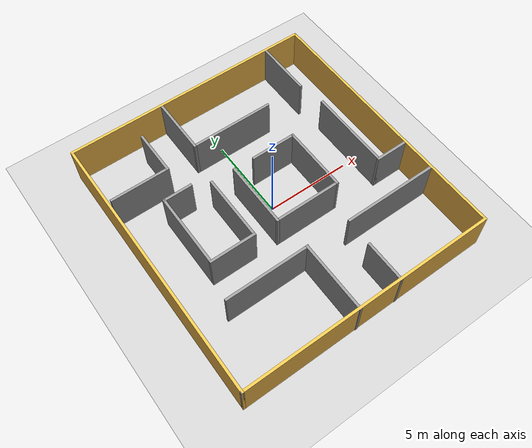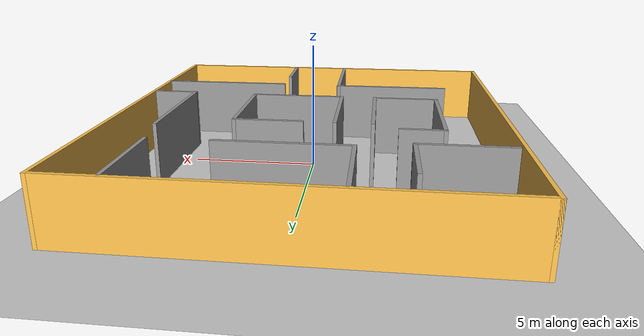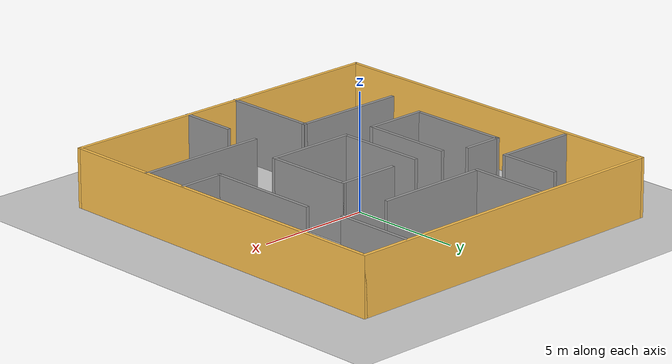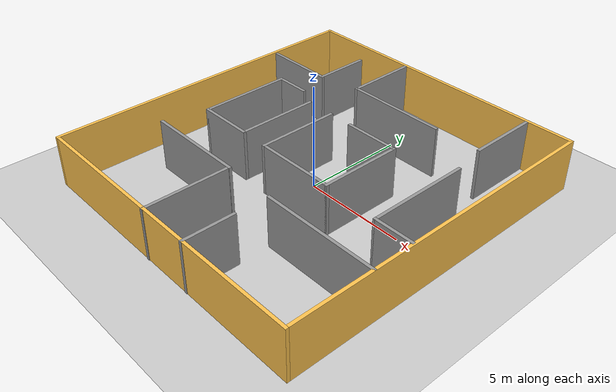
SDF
<sdf version="1.7">
 <world name="default">
  <light name="sun" type="directional">
   <pose>0 0 10 0 -0 0</pose>
   <diffuse>0.8 0.8 0.8 1</diffuse>
   <specular>0.2 0.2 0.2 1</specular>
   <attenuation>
    <range>1000</range>
    <constant>0.9</constant>
    <linear>0.01</linear>
    <quadratic>0.001</quadratic>
   </attenuation>
   <direction>-0.5 0.1 -0.9</direction>
   <spot><inner_angle>0</inner_angle><outer_angle>0</outer_angle><falloff>0</falloff></spot>
  </light>
  <model name="ground_plane">
   <static>1</static>
   <link name="link">
    <collision name="collision">
     <geometry><plane><normal>0 0 1</normal><size>100 100</size></plane></geometry>
     <surface>
      <contact><collide_bitmask>65535</collide_bitmask></contact>
      <friction><ode><mu>100</mu><mu2>50</mu2></ode></friction>
     </surface>
    </collision>
    <visual name="visual">
     <cast_shadows>0</cast_shadows>
     <geometry><plane><normal>0 0 1</normal><size>100 100</size></plane></geometry>
     <material>
      <script><uri>file://media/materials/scripts/gazebo.material</uri><name>Gazebo/Grey</name></script>
     </material>
    </visual>
   </link>
  </model>
  <gravity>0 0 -9.8</gravity>
  <magnetic_field>6e-06 2.3e-05 -4.2e-05</magnetic_field>
  <atmosphere type="adiabatic"/>
  <physics type="ode">
   <max_step_size>0.001</max_step_size>
   <real_time_factor>1</real_time_factor>
   <real_time_update_rate>1000</real_time_update_rate>
  </physics>
  <scene><ambient>0.4 0.4 0.4 1</ambient><background>0.7 0.7 0.7 1</background><shadows>1</shadows></scene>
  <spherical_coordinates>
   <surface_model>EARTH_WGS84</surface_model>
   <latitude_deg>0</latitude_deg>
   <longitude_deg>0</longitude_deg>
   <elevation>0</elevation>
   <heading_deg>0</heading_deg>
  </spherical_coordinates>
  <model name="RRC">
   <link name="Wall_0">
    <collision name="Wall_0_Collision">
     <geometry><box><size>16.15 0.15 2.5</size></box></geometry>
     <pose>0 0 1.25 0 -0 0</pose>
    </collision>
    <visual name="Wall_0_Visual">
     <pose>0 0 1.25 0 -0 0</pose>
     <geometry><box><size>16.15 0.15 2.5</size></box></geometry>
     <material>
      <script><uri>file://media/materials/scripts/gazebo.material</uri><name>Gazebo/Grey</name></script>
      <ambient>1 0.764706 0.305882 1</ambient>
     </material>
     <meta><layer>0</layer></meta>
    </visual>
    <pose>-7.5 0 0 0 -0 1.5708</pose>
   </link>
   <link name="Wall_1">
    <collision name="Wall_1_Collision">
     <geometry><box><size>15.15 0.15 2.5</size></box></geometry>
     <pose>0 0 1.25 0 -0 0</pose>
    </collision>
    <visual name="Wall_1_Visual">
     <pose>0 0 1.25 0 -0 0</pose>
     <geometry><box><size>15.15 0.15 2.5</size></box></geometry>
     <material>
      <script><uri>file://media/materials/scripts/gazebo.material</uri><name>Gazebo/Grey</name></script>
      <ambient>1 0.764706 0.305882 1</ambient>
     </material>
     <meta><layer>0</layer></meta>
    </visual>
    <pose>0 8 0 0 -0 0</pose>
   </link>
   <link name="Wall_2">
    <collision name="Wall_2_Collision">
     <geometry><box><size>16.15 0.15 2.5</size></box></geometry>
     <pose>0 0 1.25 0 -0 0</pose>
    </collision>
    <visual name="Wall_2_Visual">
     <pose>0 0 1.25 0 -0 0</pose>
     <geometry><box><size>16.15 0.15 2.5</size></box></geometry>
     <material>
      <script><uri>file://media/materials/scripts/gazebo.material</uri><name>Gazebo/Grey</name></script>
      <ambient>1 0.764706 0.305882 1</ambient>
     </material>
     <meta><layer>0</layer></meta>
    </visual>
    <pose>7.5 0 0 0 -0 -1.5708</pose>
   </link>
   <link name="Wall_3">
    <collision name="Wall_3_Collision">
     <geometry><box><size>15.15 0.15 2.5</size></box></geometry>
     <pose>0 0 1.25 0 -0 0</pose>
    </collision>
    <visual name="Wall_3_Visual">
     <pose>0 0 1.25 0 -0 0</pose>
     <geometry><box><size>15.15 0.15 2.5</size></box></geometry>
     <material>
      <script><uri>file://media/materials/scripts/gazebo.material</uri><name>Gazebo/Grey</name></script>
      <ambient>1 0.764706 0.305882 1</ambient>
     </material>
     <meta><layer>0</layer></meta>
    </visual>
    <pose>0 -8 0 0 -0 3.14159</pose>
   </link>
   <link name="Wall_4">
    <collision name="Wall_4_Collision">
     <geometry><box><size>0.15 0.15 2.5</size></box></geometry>
     <pose>0 0 1.25 0 -0 0</pose>
    </collision>
    <visual name="Wall_4_Visual">
     <pose>0 0 1.25 0 -0 0</pose>
     <geometry><box><size>0.15 0.15 2.5</size></box></geometry>
     <material>
      <script><uri>file://media/materials/scripts/gazebo.material</uri><name>Gazebo/Grey</name></script>
      <ambient>1 1 1 1</ambient>
     </material>
     <meta><layer>0</layer></meta>
    </visual>
    <pose>-7.5 -8 0 0 -0 0</pose>
   </link>
   <static>1</static>
  </model>
  <audio><device>default</device></audio>
  <model name="world_25_6.world">
   <pose>0.119762 -0.057609 0 0 -0 0</pose>
   <link name="Wall_0">
    <collision name="Wall_0_Collision">
     <geometry><box><size>2.75 0.15 2.5</size></box></geometry>
     <pose>0 0 1.25 0 -0 0</pose>
    </collision>
    <visual name="Wall_0_Visual">
     <pose>0 0 1.25 0 -0 0</pose>
     <geometry><box><size>2.75 0.15 2.5</size></box></geometry>
     <material>
      <script><uri>file://media/materials/scripts/gazebo.material</uri><name>Gazebo/Grey</name></script>
      <ambient>1 1 1 1</ambient>
     </material>
     <meta><layer>0</layer></meta>
    </visual>
    <pose>1.38481 2.03832 0 0 -0 0</pose>
   </link>
   <link name="Wall_11">
    <collision name="Wall_11_Collision">
     <geometry><box><size>2 0.15 2.5</size></box></geometry>
     <pose>0 0 1.25 0 -0 0</pose>
    </collision>
    <visual name="Wall_11_Visual">
     <pose>0 0 1.25 0 -0 0</pose>
     <geometry><box><size>2 0.15 2.5</size></box></geometry>
     <material>
      <script><uri>file://media/materials/scripts/gazebo.material</uri><name>Gazebo/Grey</name></script>
      <ambient>1 1 1 1</ambient>
     </material>
     <meta><layer>0</layer></meta>
    </visual>
    <pose>6.38484 -1.9314 0 0 -0 3.14159</pose>
   </link>
   <link name="Wall_13">
    <collision name="Wall_13_Collision">
     <geometry><box><size>5 0.15 2.5</size></box></geometry>
     <pose>0 0 1.25 0 -0 0</pose>
    </collision>
    <visual name="Wall_13_Visual">
     <pose>0 0 1.25 0 -0 0</pose>
     <geometry><box><size>5 0.15 2.5</size></box></geometry>
     <material>
      <script><uri>file://media/materials/scripts/gazebo.material</uri><name>Gazebo/Grey</name></script>
      <ambient>1 1 1 1</ambient>
     </material>
     <meta><layer>0</layer></meta>
    </visual>
    <pose>5.45984 0.493602 0 0 -0 1.5708</pose>
   </link>
   <link name="Wall_15">
    <collision name="Wall_15_Collision">
     <geometry><box><size>4 0.15 2.5</size></box></geometry>
     <pose>0 0 1.25 0 -0 0</pose>
    </collision>
    <visual name="Wall_15_Visual">
     <pose>0 0 1.25 0 -0 0</pose>
     <geometry><box><size>4 0.15 2.5</size></box></geometry>
     <material>
      <script><uri>file://media/materials/scripts/gazebo.material</uri><name>Gazebo/Grey</name></script>
      <ambient>1 1 1 1</ambient>
     </material>
     <meta><layer>0</layer></meta>
    </visual>
    <pose>-1.16519 0.113325 0 0 -0 1.5708</pose>
   </link>
   <link name="Wall_17">
    <collision name="Wall_17_Collision">
     <geometry><box><size>5.75 0.15 2.5</size></box></geometry>
     <pose>0 0 1.25 0 -0 0</pose>
    </collision>
    <visual name="Wall_17_Visual">
     <pose>0 0 1.25 0 -0 0</pose>
     <geometry><box><size>5.75 0.15 2.5</size></box></geometry>
     <material>
      <script><uri>file://media/materials/scripts/gazebo.material</uri><name>Gazebo/Grey</name></script>
      <ambient>1 1 1 1</ambient>
     </material>
     <meta><layer>0</layer></meta>
    </visual>
    <pose>4.57068 -3.96937 0 0 -0 3.14159</pose>
   </link>
   <link name="Wall_19">
    <collision name="Wall_19_Collision">
     <geometry><box><size>2.5 0.15 2.5</size></box></geometry>
     <pose>0 0 1.25 0 -0 0</pose>
    </collision>
    <visual name="Wall_19_Visual">
     <pose>0 0 1.25 0 -0 0</pose>
     <geometry><box><size>2.5 0.15 2.5</size></box></geometry>
     <material>
      <script><uri>file://media/materials/scripts/gazebo.material</uri><name>Gazebo/Grey</name></script>
      <ambient>1 1 1 1</ambient>
     </material>
     <meta><layer>0</layer></meta>
    </visual>
    <pose>1.69781 -6.78503 0 0 -0 -1.5708</pose>
   </link>
   <link name="Wall_2">
    <collision name="Wall_2_Collision">
     <geometry><box><size>4 0.15 2.5</size></box></geometry>
     <pose>0 0 1.25 0 -0 0</pose>
    </collision>
    <visual name="Wall_2_Visual">
     <pose>0 0 1.25 0 -0 0</pose>
     <geometry><box><size>4 0.15 2.5</size></box></geometry>
     <material>
      <script><uri>file://media/materials/scripts/gazebo.material</uri><name>Gazebo/Grey</name></script>
      <ambient>1 1 1 1</ambient>
     </material>
     <meta><layer>0</layer></meta>
    </visual>
    <pose>2.68481 0.113325 0 0 -0 -1.5708</pose>
   </link>
   <link name="Wall_21">
    <collision name="Wall_21_Collision">
     <geometry><box><size>4.22858 0.15 2.5</size></box></geometry>
     <pose>0 0 1.25 0 -0 0</pose>
    </collision>
    <visual name="Wall_21_Visual">
     <pose>0 0 1.25 0 -0 0</pose>
     <geometry><box><size>4.22858 0.15 2.5</size></box></geometry>
     <material>
      <script><uri>file://media/materials/scripts/gazebo.material</uri><name>Gazebo/Grey</name></script>
      <ambient>1 1 1 1</ambient>
     </material>
     <meta><layer>0</layer></meta>
    </visual>
    <pose>-0.872466 -5.93021 0 0 -0 1.5708</pose>
   </link>
   <link name="Wall_23">
    <collision name="Wall_23_Collision">
     <geometry><box><size>5 0.15 2.5</size></box></geometry>
     <pose>0 0 1.25 0 -0 0</pose>
    </collision>
    <visual name="Wall_23_Visual">
     <pose>0 0 1.25 0 -0 0</pose>
     <geometry><box><size>5 0.15 2.5</size></box></geometry>
     <material>
      <script><uri>file://media/materials/scripts/gazebo.material</uri><name>Gazebo/Grey</name></script>
      <ambient>1 1 1 1</ambient>
     </material>
     <meta><layer>0</layer></meta>
    </visual>
    <pose>-3.28226 -3.89114 0 0 -0 3.14159</pose>
   </link>
   <link name="Wall_25">
    <collision name="Wall_25_Collision">
     <geometry><box><size>4 0.15 2.5</size></box></geometry>
     <pose>0 0 1.25 0 -0 0</pose>
    </collision>
    <visual name="Wall_25_Visual">
     <pose>0 0 1.25 0 -0 0</pose>
     <geometry><box><size>4 0.15 2.5</size></box></geometry>
     <material>
      <script><uri>file://media/materials/scripts/gazebo.material</uri><name>Gazebo/Grey</name></script>
      <ambient>1 1 1 1</ambient>
     </material>
     <meta><layer>0</layer></meta>
    </visual>
    <pose>-2.59105 0.143504 0 0 -0 -1.5708</pose>
   </link>
   <link name="Wall_27">
    <collision name="Wall_27_Collision">
     <geometry><box><size>2.75 0.15 2.5</size></box></geometry>
     <pose>0 0 1.25 0 -0 0</pose>
    </collision>
    <visual name="Wall_27_Visual">
     <pose>0 0 1.25 0 -0 0</pose>
     <geometry><box><size>2.75 0.15 2.5</size></box></geometry>
     <material>
      <script><uri>file://media/materials/scripts/gazebo.material</uri><name>Gazebo/Grey</name></script>
      <ambient>1 1 1 1</ambient>
     </material>
     <meta><layer>0</layer></meta>
    </visual>
    <pose>-3.89105 -1.7815 0 0 -0 3.14159</pose>
   </link>
   <link name="Wall_28">
    <collision name="Wall_28_Collision">
     <geometry><box><size>4.5 0.15 2.5</size></box></geometry>
     <pose>0 0 1.25 0 -0 0</pose>
    </collision>
    <visual name="Wall_28_Visual">
     <pose>0 0 1.25 0 -0 0</pose>
     <geometry><box><size>4.5 0.15 2.5</size></box></geometry>
     <material>
      <script><uri>file://media/materials/scripts/gazebo.material</uri><name>Gazebo/Grey</name></script>
      <ambient>1 1 1 1</ambient>
     </material>
     <meta><layer>0</layer></meta>
    </visual>
    <pose>-5.19105 0.393504 0 0 -0 1.5708</pose>
   </link>
   <link name="Wall_29">
    <collision name="Wall_29_Collision">
     <geometry><box><size>1.75 0.15 2.5</size></box></geometry>
     <pose>0 0 1.25 0 -0 0</pose>
    </collision>
    <visual name="Wall_29_Visual">
     <pose>0 0 1.25 0 -0 0</pose>
     <geometry><box><size>1.75 0.15 2.5</size></box></geometry>
     <material>
      <script><uri>file://media/materials/scripts/gazebo.material</uri><name>Gazebo/Grey</name></script>
      <ambient>1 1 1 1</ambient>
     </material>
     <meta><layer>0</layer></meta>
    </visual>
    <pose>-4.39105 2.5685 0 0 -0 0</pose>
   </link>
   <link name="Wall_3">
    <collision name="Wall_3_Collision">
     <geometry><box><size>4 0.15 2.5</size></box></geometry>
     <pose>0 0 1.25 0 -0 0</pose>
    </collision>
    <visual name="Wall_3_Visual">
     <pose>0 0 1.25 0 -0 0</pose>
     <geometry><box><size>4 0.15 2.5</size></box></geometry>
     <material>
      <script><uri>file://media/materials/scripts/gazebo.material</uri><name>Gazebo/Grey</name></script>
      <ambient>1 1 1 1</ambient>
     </material>
     <meta><layer>0</layer></meta>
    </visual>
    <pose>0.759811 -1.81167 0 0 -0 3.14159</pose>
   </link>
   <link name="Wall_31">
    <collision name="Wall_31_Collision">
     <geometry><box><size>2.75 0.15 2.5</size></box></geometry>
     <pose>0 0 1.25 0 -0 0</pose>
    </collision>
    <visual name="Wall_31_Visual">
     <pose>0 0 1.25 0 -0 0</pose>
     <geometry><box><size>2.75 0.15 2.5</size></box></geometry>
     <material>
      <script><uri>file://media/materials/scripts/gazebo.material</uri><name>Gazebo/Grey</name></script>
      <ambient>1 1 1 1</ambient>
     </material>
     <meta><layer>0</layer></meta>
    </visual>
    <pose>-4.02068 5.46512 0 0 -0 -1.5708</pose>
   </link>
   <link name="Wall_32">
    <collision name="Wall_32_Collision">
     <geometry><box><size>3.5 0.15 2.5</size></box></geometry>
     <pose>0 0 1.25 0 -0 0</pose>
    </collision>
    <visual name="Wall_32_Visual">
     <pose>0 0 1.25 0 -0 0</pose>
     <geometry><box><size>3.5 0.15 2.5</size></box></geometry>
     <material>
      <script><uri>file://media/materials/scripts/gazebo.material</uri><name>Gazebo/Grey</name></script>
      <ambient>1 1 1 1</ambient>
     </material>
     <meta><layer>0</layer></meta>
    </visual>
    <pose>-5.69568 4.16512 0 0 -0 3.14159</pose>
   </link>
   <link name="Wall_5">
    <collision name="Wall_5_Collision">
     <geometry><box><size>5 0.15 2.5</size></box></geometry>
     <pose>0 0 1.25 0 -0 0</pose>
    </collision>
    <visual name="Wall_5_Visual">
     <pose>0 0 1.25 0 -0 0</pose>
     <geometry><box><size>5 0.15 2.5</size></box></geometry>
     <material>
      <script><uri>file://media/materials/scripts/gazebo.material</uri><name>Gazebo/Grey</name></script>
      <ambient>1 1 1 1</ambient>
     </material>
     <meta><layer>0</layer></meta>
    </visual>
    <pose>0.394483 4.57795 0 0 -0 3.14159</pose>
   </link>
   <link name="Wall_7">
    <collision name="Wall_7_Collision">
     <geometry><box><size>3.5 0.15 2.5</size></box></geometry>
     <pose>0 0 1.25 0 -0 0</pose>
    </collision>
    <visual name="Wall_7_Visual">
     <pose>0 0 1.25 0 -0 0</pose>
     <geometry><box><size>3.5 0.15 2.5</size></box></geometry>
     <material>
      <script><uri>file://media/materials/scripts/gazebo.material</uri><name>Gazebo/Grey</name></script>
      <ambient>1 1 1 1</ambient>
     </material>
     <meta><layer>0</layer></meta>
    </visual>
    <pose>-2.03052 6.25295 0 0 -0 1.5708</pose>
   </link>
   <link name="Wall_9">
    <collision name="Wall_9_Collision">
     <geometry><box><size>3.5 0.15 2.5</size></box></geometry>
     <pose>0 0 1.25 0 -0 0</pose>
    </collision>
    <visual name="Wall_9_Visual">
     <pose>0 0 1.25 0 -0 0</pose>
     <geometry><box><size>3.5 0.15 2.5</size></box></geometry>
     <material>
      <script><uri>file://media/materials/scripts/gazebo.material</uri><name>Gazebo/Grey</name></script>
      <ambient>1 1 1 1</ambient>
     </material>
     <meta><layer>0</layer></meta>
    </visual>
    <pose>5.16541 6.2945 0 0 -0 -1.5708</pose>
   </link>
   <static>1</static>
  </model>
 </world>
</sdf>
